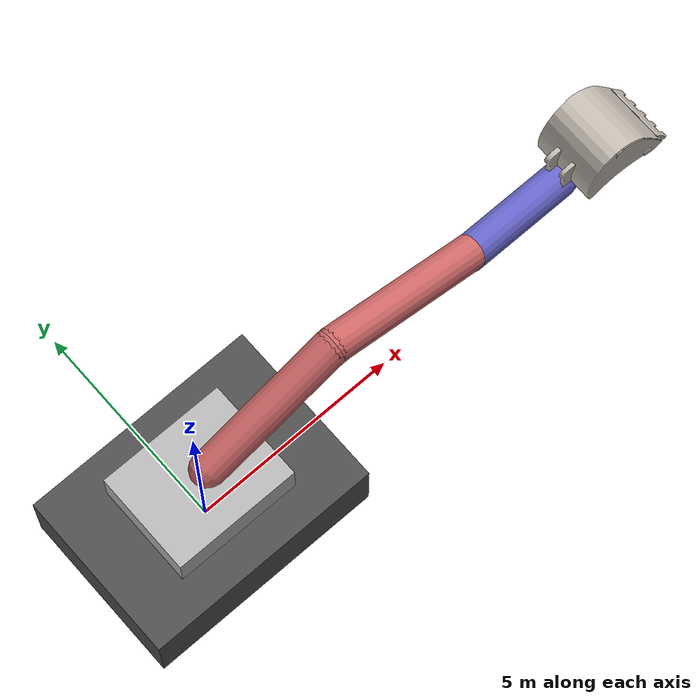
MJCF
<mujoco model="excavator">
    <compiler meshdir="mesh" texturedir="texture"/>
    <compiler angle="degree" />

    <option timestep="0.02" gravity="0 0 -9.81" />

    <visual>
        <headlight ambient="0.5 0.5 0.5" diffuse="0.6 0.6 0.6" specular="0 0 0"/>
    </visual>

    <asset>
        <mesh file="750_bucket.obj"/>
        <texture name="bucket" type="2d" file="bucket_texture.png"/>
        <material name="bucket" texture="bucket"/>
    </asset>

    <worldbody>
        <light diffuse=".5 .5 .5" pos="0 0 6" dir="0 0 -1"/>

        <body name="crawler_tracks" pos="0 0 1.7" euler="0.000000 0.000000 0.000000">
            <geom name="crawler_tracks_geom" type="box" pos="0 0 -0.85" size="2.8 2.0 0.85" rgba="0.3 0.3 0.3 1"/>

            <body name="cab" pos="0.000000 0.000000 0.915" euler="0.000000 0.000000 0.000000">
                <inertial pos="-1.74936 -0.019 0.7076" mass="32486.5" diaginertia="17860 26630 39945" />
                <geom name="cab_geom" type="box" pos="0.000000 0.000000 -0.4575" size="1.5000 1.2000 0.4575" rgba="0.7 0.7 0.7 1" />
                <joint name="cab" type="hinge" axis="0 0 1" pos="0 0 0" ref="0.0"/>
                <body name="boom" pos="0.230000 0.000000 0.000000" euler="0.000000 0.000000 0.000000" gravcomp="1">
                    <inertial pos="3.5418 0.0 -0.78665" mass="6026.386" diaginertia="30 24615 24615" />
                    <geom name="boom_geom" type="capsule" fromto="0 0 0 7.000000 0 0" size="0.100000" rgba="0.8 0.4 0.4 0.3"/>
                    <joint name="boom" type="hinge" axis="0 1 0" pos="0 0 0" range="-57.000000 37.00000" ref="0.0"/>
                    <body name="arm" pos="7.000000 0.000000 0.000000" euler="0.000000 0.000000 0.000000" gravcomp="1">
                        <inertial pos="0.4912 0.0 0.3889" mass="2693" diaginertia="215 1622 1622" />
                        <geom name="arm_geom" type="capsule" fromto="0 0 0 2.600000 0 0" size="0.400000" rgba="0.4 0.4 0.8 1"/>
                        <joint name="arm" type="hinge" axis="0 1 0" pos="0 0 0" range="35.0000 140.0000" ref="0.0"/>
                        <body name="bucket" pos="2.600000 0.000000 0.000000" euler="0.000000 0.000000 0.000000" gravcomp="1">
                            <inertial pos="0.9344 0.0 -0.7622" mass="4811.3" diaginertia="1860 2490 3838" />
                            <geom name="bucket_geom" type="mesh" mesh="750_bucket" material="bucket" pos="0.0 0.0 0.0" euler="0.0 -90.0 0.0" size="1 1 1"/>
                            <joint name="bucket" type="hinge" axis="0 1 0" pos="0 0 0" range="-26.0000 140.0000" ref="0.0"/>
                            <site name="bucket" pos="2.235000 0 0" size="0.02" rgba="1 1 0 1"/>
                        </body>
                    </body>
                    <body name="boom_r_1" pos="0.000000 0.000000 0.000000" euler="0.000000 -20.880000 0.000000" gravcomp="1">
                        <geom name="boom_r_1_geom" type="capsule" fromto="0 0 0 3.555250 0 0" size="0.400000" rgba="0.8 0.4 0.4 1"/>
                        <body name="boom_r_2" pos="3.555250 0.000000 0.000000" euler="0.000000 39.070000 0.000000" gravcomp="1">
                            <geom name="boom_r_2_geom" type="capsule" fromto="0 0 0 3.985950 0 0" size="0.400000" rgba="0.8 0.4 0.4 1"/>
                        </body>
                    </body>
                </body>
            </body>
        </body>
    </worldbody>

    <sensor>
        <jointpos name="cab_pos_sensor" joint="cab"/>
        <jointpos name="boom_pos_sensor" joint="boom"/>
        <jointpos name="arm_pos_sensor" joint="arm"/>
        <jointpos name="bucket_pos_sensor" joint="bucket"/>

        <jointvel name="cab_vel_sensor" joint="cab"/>
        <jointvel name="boom_vel_sensor" joint="boom"/>
        <jointvel name="arm_vel_sensor" joint="arm"/>
        <jointvel name="bucket_vel_sensor" joint="bucket"/>
    </sensor>
</mujoco>
